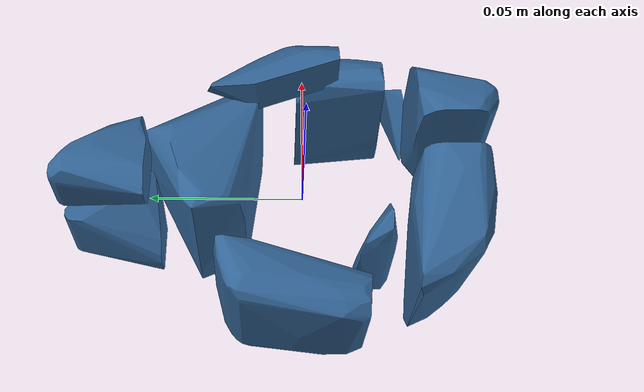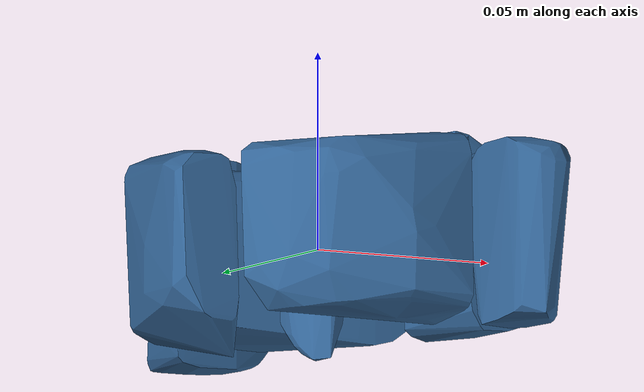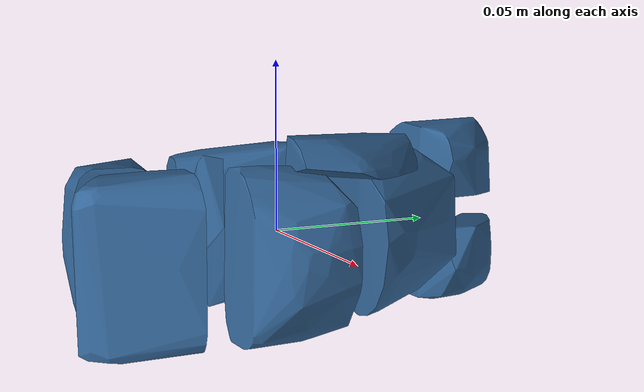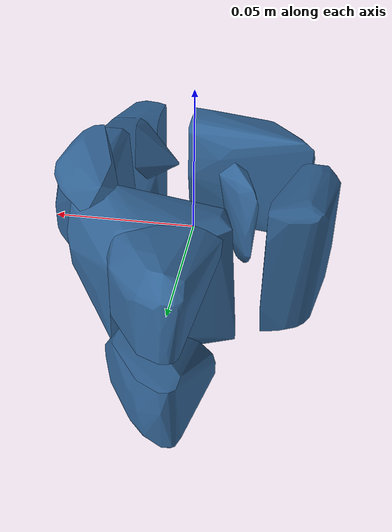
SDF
<?xml version='1.0' encoding='UTF-8'?>
<!-- This SDF was autogenerated by obj_to_drake_sdf.py -->
<sdf version="1.7">
  <model name="tape">
    <link name="tape">
      <inertial>
        <pose>0 0 0 0 0 0</pose>
        <mass>0.05</mass>
        <inertia>
          <ixx>9.1319746e-05</ixx>
          <iyy>5.8874633e-05</iyy>
          <izz>0.00011805509</izz>
          <ixy>1.9000396e-06</ixy>
          <ixz>-1.2329505e-06</ixz>
          <iyz>-9.2156953e-07</iyz>
        </inertia>
      </inertial>
      <visual name="convex_0">
        <pose>0 0 0 0 0 0</pose>
        <geometry>
          <mesh>
            <uri>tape_convex_0.obj</uri>
          </mesh>
        </geometry>
        <material>
          <diffuse>0.19607843137254902 0.39215686274509803 0.5882352941176471 1</diffuse>
        </material>
      </visual>
      <collision name="convex_0_volume">
        <pose>0 0 0 0 0 0</pose>
        <geometry>
          <mesh>
            <uri>tape_convex_0.obj</uri>
          </mesh>
        </geometry>
        <drake:proximity_properties xmlns:drake="uri:drake">
          <drake:compliant_hydroelastic/>
          <drake:hydroelastic_modulus> 3.0e7 </drake:hydroelastic_modulus>
          <drake:mesh_resolution_hint> 0.02 </drake:mesh_resolution_hint>
          <drake:hunt_crossley_dissipation>10</drake:hunt_crossley_dissipation>
          <drake:mu_dynamic>0.3</drake:mu_dynamic>
        </drake:proximity_properties>
      </collision>
      <visual name="convex_1">
        <pose>0 0 0 0 0 0</pose>
        <geometry>
          <mesh>
            <uri>tape_convex_1.obj</uri>
          </mesh>
        </geometry>
        <material>
          <diffuse>0.19607843137254902 0.39215686274509803 0.5882352941176471 1</diffuse>
        </material>
      </visual>
      <collision name="convex_1_volume">
        <pose>0 0 0 0 0 0</pose>
        <geometry>
          <mesh>
            <uri>tape_convex_1.obj</uri>
          </mesh>
        </geometry>
        <drake:proximity_properties xmlns:drake="uri:drake">
          <drake:compliant_hydroelastic/>
          <drake:hydroelastic_modulus> 3.0e7 </drake:hydroelastic_modulus>
          <drake:mesh_resolution_hint> 0.02 </drake:mesh_resolution_hint>
          <drake:hunt_crossley_dissipation>10</drake:hunt_crossley_dissipation>
          <drake:mu_dynamic>0.3</drake:mu_dynamic>
        </drake:proximity_properties>
      </collision>
      <visual name="convex_2">
        <pose>0 0 0 0 0 0</pose>
        <geometry>
          <mesh>
            <uri>tape_convex_2.obj</uri>
          </mesh>
        </geometry>
        <material>
          <diffuse>0.19607843137254902 0.39215686274509803 0.5882352941176471 1</diffuse>
        </material>
      </visual>
      <collision name="convex_2_volume">
        <pose>0 0 0 0 0 0</pose>
        <geometry>
          <mesh>
            <uri>tape_convex_2.obj</uri>
          </mesh>
        </geometry>
        <drake:proximity_properties xmlns:drake="uri:drake">
          <drake:compliant_hydroelastic/>
          <drake:hydroelastic_modulus> 3.0e7 </drake:hydroelastic_modulus>
          <drake:mesh_resolution_hint> 0.02 </drake:mesh_resolution_hint>
          <drake:hunt_crossley_dissipation>10</drake:hunt_crossley_dissipation>
          <drake:mu_dynamic>0.3</drake:mu_dynamic>
        </drake:proximity_properties>
      </collision>
      <visual name="convex_3">
        <pose>0 0 0 0 0 0</pose>
        <geometry>
          <mesh>
            <uri>tape_convex_3.obj</uri>
          </mesh>
        </geometry>
        <material>
          <diffuse>0.19607843137254902 0.39215686274509803 0.5882352941176471 1</diffuse>
        </material>
      </visual>
      <collision name="convex_3_volume">
        <pose>0 0 0 0 0 0</pose>
        <geometry>
          <mesh>
            <uri>tape_convex_3.obj</uri>
          </mesh>
        </geometry>
        <drake:proximity_properties xmlns:drake="uri:drake">
          <drake:compliant_hydroelastic/>
          <drake:hydroelastic_modulus> 3.0e7 </drake:hydroelastic_modulus>
          <drake:mesh_resolution_hint> 0.02 </drake:mesh_resolution_hint>
          <drake:hunt_crossley_dissipation>10</drake:hunt_crossley_dissipation>
          <drake:mu_dynamic>0.3</drake:mu_dynamic>
        </drake:proximity_properties>
      </collision>
      <visual name="convex_4">
        <pose>0 0 0 0 0 0</pose>
        <geometry>
          <mesh>
            <uri>tape_convex_4.obj</uri>
          </mesh>
        </geometry>
        <material>
          <diffuse>0.19607843137254902 0.39215686274509803 0.5882352941176471 1</diffuse>
        </material>
      </visual>
      <collision name="convex_4_volume">
        <pose>0 0 0 0 0 0</pose>
        <geometry>
          <mesh>
            <uri>tape_convex_4.obj</uri>
          </mesh>
        </geometry>
        <drake:proximity_properties xmlns:drake="uri:drake">
          <drake:compliant_hydroelastic/>
          <drake:hydroelastic_modulus> 3.0e7 </drake:hydroelastic_modulus>
          <drake:mesh_resolution_hint> 0.02 </drake:mesh_resolution_hint>
          <drake:hunt_crossley_dissipation>10</drake:hunt_crossley_dissipation>
          <drake:mu_dynamic>0.3</drake:mu_dynamic>
        </drake:proximity_properties>
      </collision>
      <visual name="convex_5">
        <pose>0 0 0 0 0 0</pose>
        <geometry>
          <mesh>
            <uri>tape_convex_5.obj</uri>
          </mesh>
        </geometry>
        <material>
          <diffuse>0.19607843137254902 0.39215686274509803 0.5882352941176471 1</diffuse>
        </material>
      </visual>
      <collision name="convex_5_volume">
        <pose>0 0 0 0 0 0</pose>
        <geometry>
          <mesh>
            <uri>tape_convex_5.obj</uri>
          </mesh>
        </geometry>
        <drake:proximity_properties xmlns:drake="uri:drake">
          <drake:compliant_hydroelastic/>
          <drake:hydroelastic_modulus> 3.0e7 </drake:hydroelastic_modulus>
          <drake:mesh_resolution_hint> 0.02 </drake:mesh_resolution_hint>
          <drake:hunt_crossley_dissipation>10</drake:hunt_crossley_dissipation>
          <drake:mu_dynamic>0.3</drake:mu_dynamic>
        </drake:proximity_properties>
      </collision>
      <visual name="convex_6">
        <pose>0 0 0 0 0 0</pose>
        <geometry>
          <mesh>
            <uri>tape_convex_6.obj</uri>
          </mesh>
        </geometry>
        <material>
          <diffuse>0.19607843137254902 0.39215686274509803 0.5882352941176471 1</diffuse>
        </material>
      </visual>
      <collision name="convex_6_volume">
        <pose>0 0 0 0 0 0</pose>
        <geometry>
          <mesh>
            <uri>tape_convex_6.obj</uri>
          </mesh>
        </geometry>
        <drake:proximity_properties xmlns:drake="uri:drake">
          <drake:compliant_hydroelastic/>
          <drake:hydroelastic_modulus> 3.0e7 </drake:hydroelastic_modulus>
          <drake:mesh_resolution_hint> 0.02 </drake:mesh_resolution_hint>
          <drake:hunt_crossley_dissipation>10</drake:hunt_crossley_dissipation>
          <drake:mu_dynamic>0.3</drake:mu_dynamic>
        </drake:proximity_properties>
      </collision>
      <visual name="convex_7">
        <pose>0 0 0 0 0 0</pose>
        <geometry>
          <mesh>
            <uri>tape_convex_7.obj</uri>
          </mesh>
        </geometry>
        <material>
          <diffuse>0.19607843137254902 0.39215686274509803 0.5882352941176471 1</diffuse>
        </material>
      </visual>
      <collision name="convex_7_volume">
        <pose>0 0 0 0 0 0</pose>
        <geometry>
          <mesh>
            <uri>tape_convex_7.obj</uri>
          </mesh>
        </geometry>
        <drake:proximity_properties xmlns:drake="uri:drake">
          <drake:compliant_hydroelastic/>
          <drake:hydroelastic_modulus> 3.0e7 </drake:hydroelastic_modulus>
          <drake:mesh_resolution_hint> 0.02 </drake:mesh_resolution_hint>
          <drake:hunt_crossley_dissipation>10</drake:hunt_crossley_dissipation>
          <drake:mu_dynamic>0.3</drake:mu_dynamic>
        </drake:proximity_properties>
      </collision>
      <visual name="convex_8">
        <pose>0 0 0 0 0 0</pose>
        <geometry>
          <mesh>
            <uri>tape_convex_8.obj</uri>
          </mesh>
        </geometry>
        <material>
          <diffuse>0.19607843137254902 0.39215686274509803 0.5882352941176471 1</diffuse>
        </material>
      </visual>
      <collision name="convex_8_volume">
        <pose>0 0 0 0 0 0</pose>
        <geometry>
          <mesh>
            <uri>tape_convex_8.obj</uri>
          </mesh>
        </geometry>
        <drake:proximity_properties xmlns:drake="uri:drake">
          <drake:compliant_hydroelastic/>
          <drake:hydroelastic_modulus> 3.0e7 </drake:hydroelastic_modulus>
          <drake:mesh_resolution_hint> 0.02 </drake:mesh_resolution_hint>
          <drake:hunt_crossley_dissipation>10</drake:hunt_crossley_dissipation>
          <drake:mu_dynamic>0.3</drake:mu_dynamic>
        </drake:proximity_properties>
      </collision>
      <visual name="convex_9">
        <pose>0 0 0 0 0 0</pose>
        <geometry>
          <mesh>
            <uri>tape_convex_9.obj</uri>
          </mesh>
        </geometry>
        <material>
          <diffuse>0.19607843137254902 0.39215686274509803 0.5882352941176471 1</diffuse>
        </material>
      </visual>
      <collision name="convex_9_volume">
        <pose>0 0 0 0 0 0</pose>
        <geometry>
          <mesh>
            <uri>tape_convex_9.obj</uri>
          </mesh>
        </geometry>
        <drake:proximity_properties xmlns:drake="uri:drake">
          <drake:compliant_hydroelastic/>
          <drake:hydroelastic_modulus> 3.0e7 </drake:hydroelastic_modulus>
          <drake:mesh_resolution_hint> 0.02 </drake:mesh_resolution_hint>
          <drake:hunt_crossley_dissipation>10</drake:hunt_crossley_dissipation>
          <drake:mu_dynamic>0.3</drake:mu_dynamic>
        </drake:proximity_properties>
      </collision>
    </link>
  </model>
</sdf>
